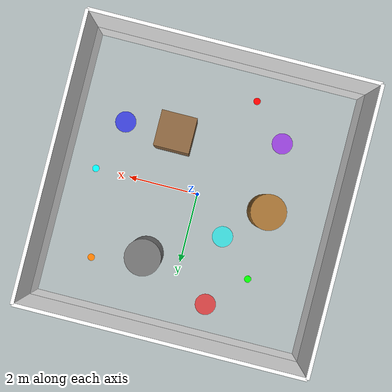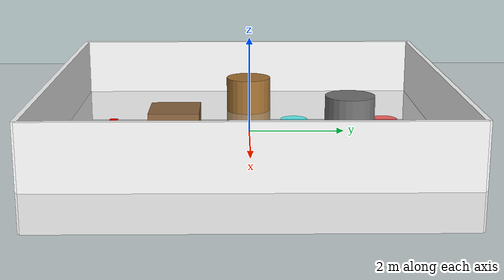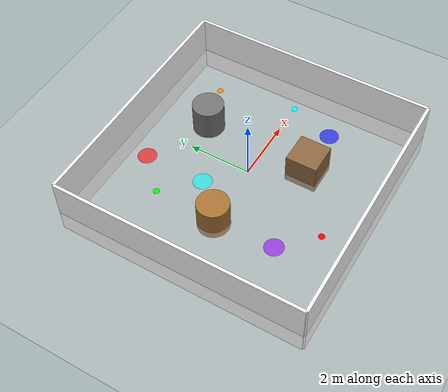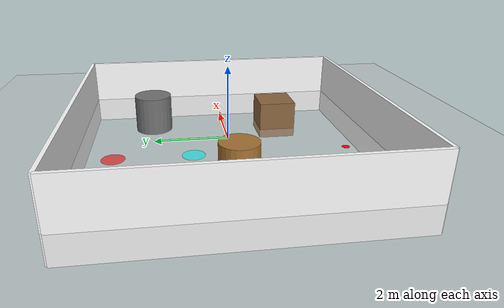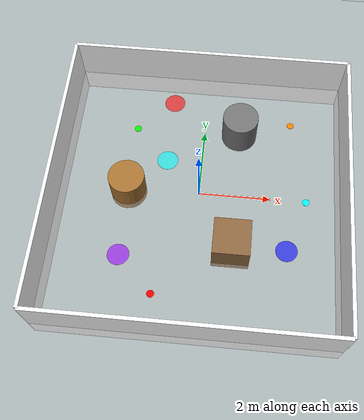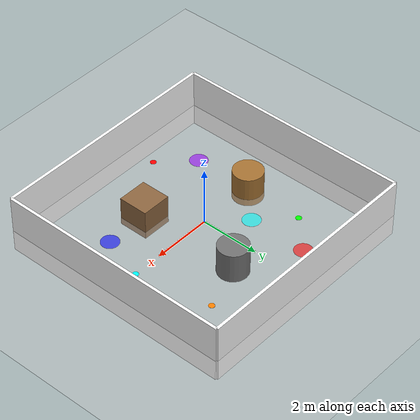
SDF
<?xml version="1.0" ?>
<sdf version="1.8">
    <world name="training_arena">
        <physics name="1ms" type="ignored">
            <max_step_size>0.002</max_step_size>
            <real_time_factor>2.0</real_time_factor>
        </physics>

        <plugin filename="gz-sim-physics-system" name="gz::sim::systems::Physics"/>
        <plugin filename="gz-sim-user-commands-system" name="gz::sim::systems::UserCommands"/>
        <plugin filename="gz-sim-scene-broadcaster-system" name="gz::sim::systems::SceneBroadcaster"/>
        <plugin filename="gz-sim-contact-system" name="gz::sim::systems::Contact"/>

        <plugin filename="gz-sim-sensors-system" name="gz::sim::systems::Sensors">
            <render_engine>ogre2</render_engine>
        </plugin>

        <model name="world_axis_marker">
            <static>true</static>
            <pose>0 0 0.02 0 0 0</pose>

            <!-- X axis: red -->
            <link name="x_axis">
                <pose>1.0 0 0 0 0 0</pose>
                <visual name="visual">
                    <geometry>
                        <box>
                            <size>2.0 0.04 0.04</size>
                        </box>
                    </geometry>
                    <material>
                        <ambient>1 0 0 1</ambient>
                        <diffuse>1 0 0 1</diffuse>
                    </material>
                </visual>
            </link>

            <!-- Y axis: green -->
            <link name="y_axis">
                <pose>0 1.0 0 0 0 0</pose>
                <visual name="visual">
                    <geometry>
                        <box>
                            <size>0.04 2.0 0.04</size>
                        </box>
                    </geometry>
                    <material>
                        <ambient>0 1 0 1</ambient>
                        <diffuse>0 1 0 1</diffuse>
                    </material>
                </visual>
            </link>

        </model>

        <light name="ceiling_light" type="point">
            <pose>0 0 3 0 0 0</pose>
            <diffuse>1 1 1 1</diffuse>
            <specular>0.5 0.5 0.5 1</specular>
            <attenuation>
                <range>10</range>
                <constant>0.5</constant>
                <linear>0.1</linear>
                <quadratic>0.01</quadratic>
            </attenuation>
        </light>

        <model name="training_floor">
            <static>true</static>
            <link name="link">
                <collision name="collision">
                    <geometry><plane><normal>0 0 1</normal><size>100 100</size></plane></geometry>
                </collision>
                <visual name="visual">
                    <geometry><plane><normal>0 0 1</normal><size>100 100</size></plane></geometry>
                    <material>
                        <ambient>0.8 0.8 0.8 1</ambient>
                        <diffuse>0.8 0.8 0.8 1</diffuse>
                        <specular>0.8 0.8 0.8 1</specular>
                    </material>
                </visual>
            </link>
        </model>

        <model name="arena_walls">
            <static>true</static>

            <link name="wall_north">
                <pose>4.0 0 0.25 0 0 0</pose>
                <collision name="c">
                    <geometry>
                        <box><size>0.1 8.0 0.5</size></box>
                    </geometry>
                </collision>
                <visual name="v">
                    <geometry>
                        <box><size>0.1 8.0 2</size></box>
                    </geometry>
                    <material>
                        <ambient>1 1 1 1</ambient>
                        <diffuse>1 1 1 1</diffuse>
                        <specular>0.2 0.2 0.2 1</specular>
                        <pbr>
                            <metal>
                                <albedo_map>file:///home/sajan.bhujel/capstone_multiagent_ws/src/edubot_sim/media/materials/textures/brick_wall.png</albedo_map>
                            </metal>
                        </pbr>
                    </material>
                </visual>
            </link>

            <link name="wall_south">
                <pose>-4.0 0 0.25 0 0 0</pose>
                <collision name="c">
                    <geometry>
                        <box><size>0.1 8.0 0.5</size></box>
                    </geometry>
                </collision>
                <visual name="v">
                    <geometry>
                        <box><size>0.1 8.0 2</size></box>
                    </geometry>
                    <material>
                        <ambient>1 1 1 1</ambient>
                        <diffuse>1 1 1 1</diffuse>
                        <specular>0.2 0.2 0.2 1</specular>
                        <pbr>
                            <metal>
                                <albedo_map>file:///home/sajan.bhujel/capstone_multiagent_ws/src/edubot_sim/media/materials/textures/brick_wall.png</albedo_map>
                            </metal>
                        </pbr>
                    </material>
                </visual>
            </link>

            <link name="wall_east">
                <pose>0 4.0 0.25 0 0 1.5708</pose>
                <collision name="c">
                    <geometry>
                        <box><size>0.1 8.0 0.5</size></box>
                    </geometry>
                </collision>
                <visual name="v">
                    <geometry>
                        <box><size>0.1 8.0 2</size></box>
                    </geometry>
                    <material>
                        <ambient>1 1 1 1</ambient>
                        <diffuse>1 1 1 1</diffuse>
                        <specular>0.2 0.2 0.2 1</specular>
                        <pbr>
                            <metal>
                                <albedo_map>file:///home/sajan.bhujel/capstone_multiagent_ws/src/edubot_sim/media/materials/textures/brick_wall.png</albedo_map>
                            </metal>
                        </pbr>
                    </material>
                </visual>
            </link>

            <link name="wall_west">
                <pose>0 -4.0 0.25 0 0 1.5708</pose>
                <collision name="c">
                    <geometry>
                        <box><size>0.1 8.0 0.5</size></box>
                    </geometry>
                </collision>
                <visual name="v">
                    <geometry>
                        <box><size>0.1 8.0 2</size></box>
                    </geometry>
                    <material>
                        <ambient>1 1 1 1</ambient>
                        <diffuse>1 1 1 1</diffuse>
                        <specular>0.2 0.2 0.2 1</specular>
                        <pbr>
                            <metal>
                                <albedo_map>file:///home/sajan.bhujel/capstone_multiagent_ws/src/edubot_sim/media/materials/textures/brick_wall.png</albedo_map>
                            </metal>
                        </pbr>
                    </material>
                </visual>
            </link>

        </model>

        <model name="cylinder_obs_1">
            <pose>1.0 2.0 0.5 0 0 0</pose>
            <static>true</static>
            <link name="link">
                <collision name="c">
                    <geometry><cylinder><radius>0.5</radius><length>1</length></cylinder></geometry>
                </collision>
                <visual name="v">
                    <geometry><cylinder><radius>0.5</radius><length>1</length></cylinder></geometry>
                    <material>
                        <ambient>0.35 0.35 0.35 1</ambient>
                        <diffuse>0.45 0.45 0.45 1</diffuse>
                        <specular>0.25 0.25 0.25 1</specular>
                    </material>
                </visual>
            </link>
        </model>

        <model name="cylinder_obs_2">
            <pose>-2 0 0.25 0 0 0</pose>
            <static>true</static>
            <link name="link">
                <collision name="c">
                    <geometry><cylinder><radius>0.5</radius><length>1</length></cylinder></geometry>
                </collision>
                <visual name="v">
                    <geometry><cylinder><radius>0.5</radius><length>1</length></cylinder></geometry>
                    <material>
                        <ambient>0.55 0.35 0.15 1</ambient>
                        <diffuse>0.65 0.45 0.20 1</diffuse>
                        <specular>0.15 0.15 0.15 1</specular>
                    </material>
                </visual>
            </link>
        </model>

        <model name="box_obs_1">
            <pose>1.0 -1.5 0.25 0 0 0</pose>
            <static>true</static>
            <link name="link">
                <collision name="c">
                    <geometry><box><size>1 1 1</size></box></geometry>
                </collision>
                <visual name="v">
                    <geometry><box><size>1 1 1</size></box></geometry>
                    <material>
                        <ambient>0.45 0.32 0.20 1</ambient>
                        <diffuse>0.55 0.40 0.25 1</diffuse>
                        <specular>0.10 0.10 0.10 1</specular>
                    </material>
                </visual>
            </link>
        </model>

    <!-- Robot 1 Start Marker -->
    <model name="robot1_start_marker">
        <static>true</static>
        <pose>-2 2 0.003 0 0 0</pose>
        <link name="link">
            <visual name="visual">
                <geometry>
                    <cylinder>
                        <radius>0.1</radius>
                        <length>0.005</length>
                    </cylinder>
                </geometry>
                <material>
                    <ambient>0 1 0 1</ambient>
                    <diffuse>0 1 0 1</diffuse>
                </material>
            </visual>
        </link>
    </model>

    <!-- Robot 1 Goal Marker -->
    <model name="robot1_goal_marker">
        <static>true</static>
        <pose>2.5 -1.5 0.005 0 0 0</pose>
        <link name="link">
            <visual name="visual">
                <geometry>
                    <cylinder>
                        <radius>0.30</radius>
                        <length>0.005</length>
                    </cylinder>
                </geometry>
                <material>
                    <ambient>0 0 1 0.6</ambient>
                    <diffuse>0 0 1 0.6</diffuse>
                </material>
            </visual>
        </link>
    </model>

    <!-- Robot 2 Start Marker -->
    <model name="robot2_start_marker">
        <static>true</static>
        <pose>2.5 2.5 0.004 0 0 0</pose>
        <link name="link">
            <visual name="visual">
                <geometry>
                    <cylinder>
                        <radius>0.1</radius>
                        <length>0.005</length>
                    </cylinder>
                </geometry>
                <material>
                    <ambient>1 0.5 0 1</ambient>
                    <diffuse>1 0.5 0 1</diffuse>
                </material>
            </visual>
        </link>
    </model>

    <!-- Robot 2 Goal Marker -->
    <model name="robot2_goal_marker">
        <static>true</static>
        <pose>-2 -2 0.006 0 0 0</pose>
        <link name="link">
            <visual name="visual">
                <geometry>
                    <cylinder>
                        <radius>0.30</radius>
                        <length>0.005</length>
                    </cylinder>
                </geometry>
                <material>
                    <ambient>0.6 0 1 0.6</ambient>
                    <diffuse>0.6 0 1 0.6</diffuse>
                </material>
            </visual>
        </link>
    </model>

    <!-- Robot 3 Start Marker -->
    <model name="robot3_start_marker">
        <static>true</static>
        <pose>-1 -3 0.004 0 0 0</pose>
        <link name="link">
            <visual name="visual">
                <geometry>
                    <cylinder>
                        <radius>0.1</radius>
                        <length>0.005</length>
                    </cylinder>
                </geometry>
                <material>
                    <ambient>1 0 0 1</ambient>
                    <diffuse>1 0 0 1</diffuse>
                </material>
            </visual>
        </link>
    </model>

    <!-- Robot 3 Goal Marker -->
    <model name="robot3_goal_marker">
        <static>true</static>
        <pose>-1 3 0.006 0 0 0</pose>
        <link name="link">
            <visual name="visual">
                <geometry>
                    <cylinder>
                        <radius>0.30</radius>
                        <length>0.005</length>
                    </cylinder>
                </geometry>
                <material>
                    <ambient>1 0 0 0.6</ambient>
                    <diffuse>1 0 0 0.6</diffuse>
                </material>
            </visual>
        </link>
    </model>

    <!-- Robot 4 Start Marker -->
    <model name="robot4_start_marker">
        <static>true</static>
        <pose>3 0 0.004 0 0 0</pose>
        <link name="link">
            <visual name="visual">
                <geometry>
                    <cylinder>
                        <radius>0.1</radius>
                        <length>0.005</length>
                    </cylinder>
                </geometry>
                <material>
                    <ambient>0 1 1 1</ambient>
                    <diffuse>0 1 1 1</diffuse>
                </material>
            </visual>
        </link>
    </model>

    <!-- Robot 4 Goal Marker -->
    <model name="robot4_goal_marker">
        <static>true</static>
        <pose>-1 1 0.006 0 0 0</pose>
        <link name="link">
            <visual name="visual">
                <geometry>
                    <cylinder>
                        <radius>0.30</radius>
                        <length>0.005</length>
                    </cylinder>
                </geometry>
                <material>
                    <ambient>0 1 1 0.6</ambient>
                    <diffuse>0 1 1 0.6</diffuse>
                </material>
            </visual>
        </link>
    </model>

    </world>
</sdf>
